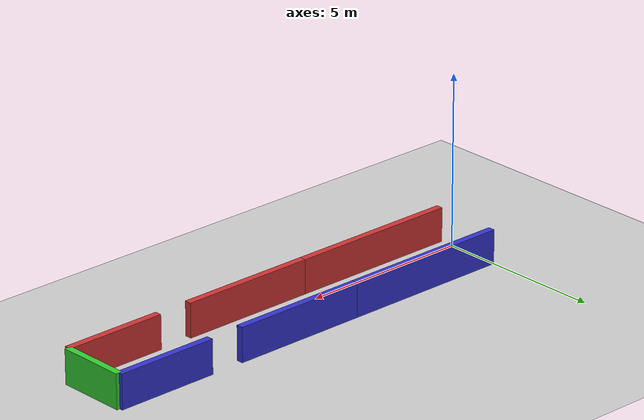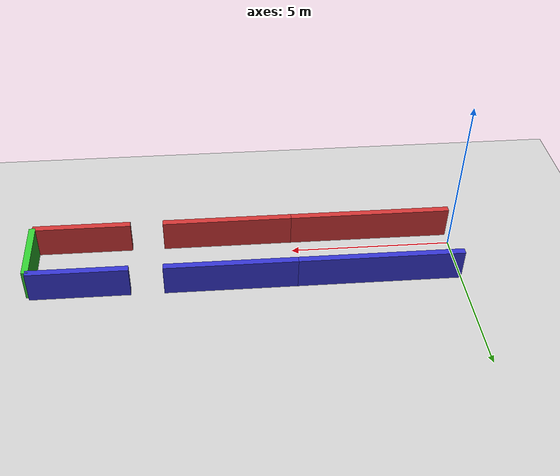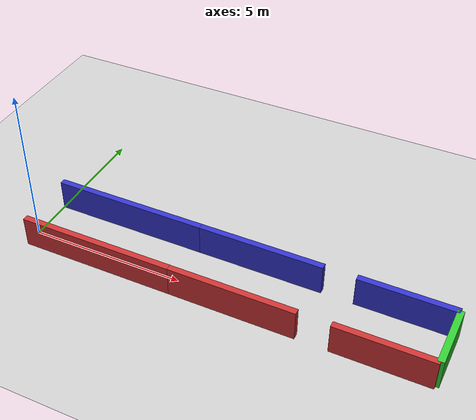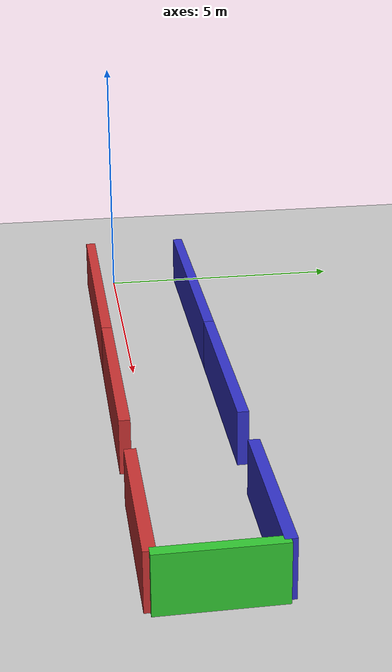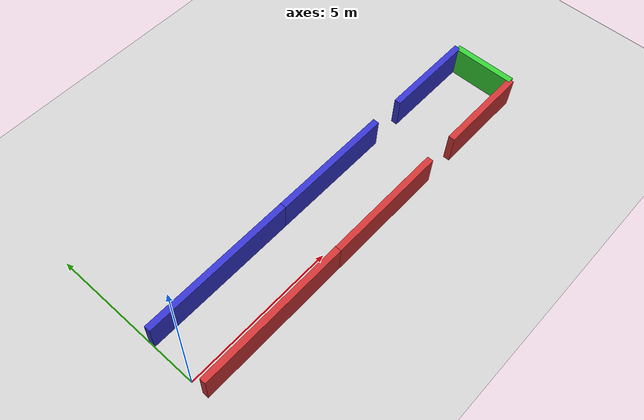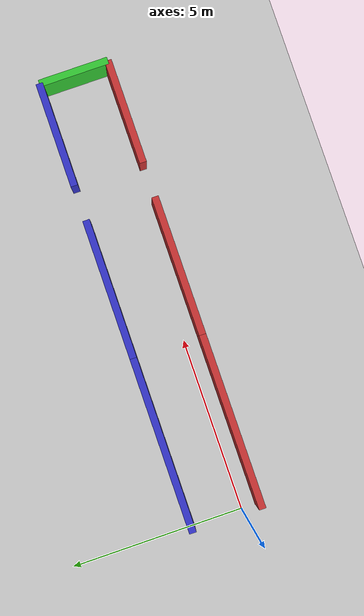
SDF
<?xml version="1.0"?>
<sdf version="1.6">
  <world name="junction_test">

    <physics type="ode">
      <real_time_update_rate>1000.0</real_time_update_rate>
      <max_step_size>0.001</max_step_size>
    </physics>

    <include>
      <uri>model://sun</uri>
    </include>

    <include>
      <uri>model://ground_plane</uri>
    </include>

    <!-- Starting corridor - left wall -->
    <model name="start_left">
      <static>true</static>
      <pose>2.5 -0.5 0.5 0 0 0</pose>
      <link name="wall">
        <visual name="visual"><geometry><box><size>5 0.2 1</size></box></geometry>
          <material><ambient>0.8 0.2 0.2 1</ambient></material></visual>
        <collision name="collision"><geometry><box><size>5 0.2 1</size></box></geometry></collision>
      </link>
    </model>

    <!-- Starting corridor - right wall -->
    <model name="start_right">
      <static>true</static>
      <pose>2.5 1.5 0.5 0 0 0</pose>
      <link name="wall">
        <visual name="visual"><geometry><box><size>5 0.2 1</size></box></geometry>
          <material><ambient>0.2 0.2 0.8 1</ambient></material></visual>
        <collision name="collision"><geometry><box><size>5 0.2 1</size></box></geometry></collision>
      </link>
    </model>

    <!-- T-junction at x=5: LEFT opening (gap in left wall from x=4.5 to x=5.5) -->
    <!-- Continue left wall after gap -->
    <model name="after_tjunc_left">
      <static>true</static>
      <pose>7 -0.5 0.5 0 0 0</pose>
      <link name="wall">
        <visual name="visual"><geometry><box><size>4 0.2 1</size></box></geometry>
          <material><ambient>0.8 0.2 0.2 1</ambient></material></visual>
        <collision name="collision"><geometry><box><size>4 0.2 1</size></box></geometry></collision>
      </link>
    </model>

    <!-- Continue right wall -->
    <model name="middle_right">
      <static>true</static>
      <pose>7 1.5 0.5 0 0 0</pose>
      <link name="wall">
        <visual name="visual"><geometry><box><size>4 0.2 1</size></box></geometry>
          <material><ambient>0.2 0.2 0.8 1</ambient></material></visual>
        <collision name="collision"><geometry><box><size>4 0.2 1</size></box></geometry></collision>
      </link>
    </model>

    <!-- Cross junction at x=9: gaps in BOTH walls -->
    <model name="final_left">
      <static>true</static>
      <pose>11.5 -0.5 0.5 0 0 0</pose>
      <link name="wall">
        <visual name="visual"><geometry><box><size>3 0.2 1</size></box></geometry>
          <material><ambient>0.8 0.2 0.2 1</ambient></material></visual>
        <collision name="collision"><geometry><box><size>3 0.2 1</size></box></geometry></collision>
      </link>
    </model>

    <model name="final_right">
      <static>true</static>
      <pose>11.5 1.5 0.5 0 0 0</pose>
      <link name="wall">
        <visual name="visual"><geometry><box><size>3 0.2 1</size></box></geometry>
          <material><ambient>0.2 0.2 0.8 1</ambient></material></visual>
        <collision name="collision"><geometry><box><size>3 0.2 1</size></box></geometry></collision>
      </link>
    </model>

    <!-- End wall (target at x=13) -->
    <model name="end_wall">
      <static>true</static>
      <pose>13 0.5 0.5 0 0 0</pose>
      <link name="wall">
        <visual name="visual"><geometry><box><size>0.2 2 1</size></box></geometry>
          <material><ambient>0.2 0.8 0.2 1</ambient></material></visual>
        <collision name="collision"><geometry><box><size>0.2 2 1</size></box></geometry></collision>
      </link>
    </model>

  </world>
</sdf>
